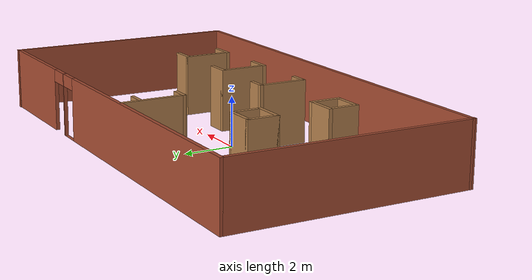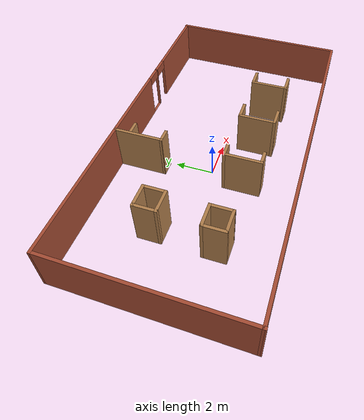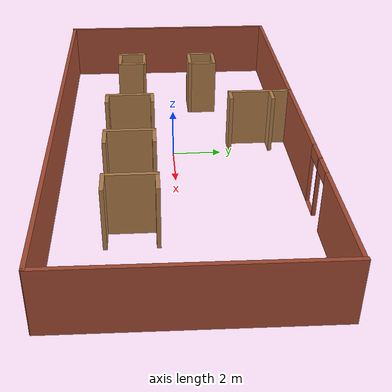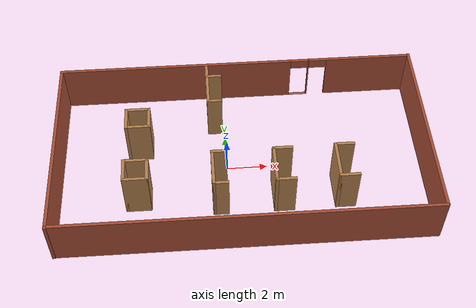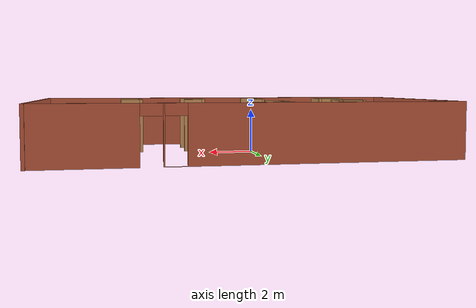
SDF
<?xml version='1.0'?>
<sdf version='1.7'>
  <model name='testdemo'>
    <pose>0.761967 0.164991 0 0 -0 0</pose>
    <link name='Wall_11'>
      <collision name='Wall_11_Collision'>
        <geometry>
          <box>
            <size>9.71806 0.15 2.5</size>
          </box>
        </geometry>
        <pose>0 0 1.25 0 -0 0</pose>
      </collision>
      <visual name='Wall_11_Visual'>
        <pose>0 0 1.25 0 -0 0</pose>
        <geometry>
          <box>
            <size>9.71806 0.15 2.5</size>
          </box>
        </geometry>
        <material>
          <script>
            <uri>file://media/materials/scripts/gazebo.material</uri>
            <name>Gazebo/Bricks</name>
          </script>
          <ambient>1 1 1 1</ambient>
        </material>
        <meta>
          <layer>0</layer>
        </meta>
      </visual>
      <pose>9.00891 0.015296 0 0 -0 1.56127</pose>
    </link>
    <link name='Wall_12'>
      <pose>0.030297 4.76832 0 0 -0 -3.14157</pose>
      <visual name='Wall_12_Visual_0'>
        <pose>-6.88355 0 1.25 0 -0 0</pose>
        <geometry>
          <box>
            <size>4.37011 0.15 2.5</size>
          </box>
        </geometry>
        <material>
          <script>
            <uri>file://media/materials/scripts/gazebo.material</uri>
            <name>Gazebo/Bricks</name>
          </script>
          <ambient>1 1 1 1</ambient>
        </material>
        <meta>
          <layer>0</layer>
        </meta>
      </visual>
      <collision name='Wall_12_Collision_0'>
        <geometry>
          <box>
            <size>4.37011 0.15 2.5</size>
          </box>
        </geometry>
        <pose>-6.88355 0 1.25 0 -0 0</pose>
      </collision>
      <visual name='Wall_12_Visual_1'>
        <pose>-3.76859 0 1.25 0 -0 0</pose>
        <geometry>
          <box>
            <size>0.059809 0.15 2.5</size>
          </box>
        </geometry>
        <material>
          <script>
            <uri>file://media/materials/scripts/gazebo.material</uri>
            <name>Gazebo/Bricks</name>
          </script>
          <ambient>1 1 1 1</ambient>
        </material>
        <meta>
          <layer>0</layer>
        </meta>
      </visual>
      <collision name='Wall_12_Collision_1'>
        <geometry>
          <box>
            <size>0.059809 0.15 2.5</size>
          </box>
        </geometry>
        <pose>-3.76859 0 1.25 0 -0 0</pose>
      </collision>
      <visual name='Wall_12_Visual_2'>
        <pose>3.11496 0 1.25 0 -0 0</pose>
        <geometry>
          <box>
            <size>11.9073 0.15 2.5</size>
          </box>
        </geometry>
        <material>
          <script>
            <uri>file://media/materials/scripts/gazebo.material</uri>
            <name>Gazebo/Bricks</name>
          </script>
          <ambient>1 1 1 1</ambient>
        </material>
        <meta>
          <layer>0</layer>
        </meta>
      </visual>
      <collision name='Wall_12_Collision_2'>
        <geometry>
          <box>
            <size>11.9073 0.15 2.5</size>
          </box>
        </geometry>
        <pose>3.11496 0 1.25 0 -0 0</pose>
      </collision>
      <visual name='Wall_12_Visual_3'>
        <pose>-3.28869 0 0 0 -0 0</pose>
        <geometry>
          <box>
            <size>0.9 0.15 0</size>
          </box>
        </geometry>
        <material>
          <script>
            <uri>file://media/materials/scripts/gazebo.material</uri>
            <name>Gazebo/Bricks</name>
          </script>
          <ambient>1 1 1 1</ambient>
        </material>
        <meta>
          <layer>0</layer>
        </meta>
      </visual>
      <collision name='Wall_12_Collision_3'>
        <geometry>
          <box>
            <size>0.9 0.15 0</size>
          </box>
        </geometry>
        <pose>-3.28869 0 0 0 -0 0</pose>
      </collision>
      <visual name='Wall_12_Visual_4'>
        <pose>-4.2485 0 2.25 0 -0 0</pose>
        <geometry>
          <box>
            <size>0.9 0.15 0.5</size>
          </box>
        </geometry>
        <material>
          <script>
            <uri>file://media/materials/scripts/gazebo.material</uri>
            <name>Gazebo/Bricks</name>
          </script>
          <ambient>1 1 1 1</ambient>
        </material>
        <meta>
          <layer>0</layer>
        </meta>
      </visual>
      <collision name='Wall_12_Collision_4'>
        <geometry>
          <box>
            <size>0.9 0.15 0.5</size>
          </box>
        </geometry>
        <pose>-4.2485 0 2.25 0 -0 0</pose>
      </collision>
      <visual name='Wall_12_Visual_5'>
        <pose>-3.28869 0 2.2545 0 -0 0</pose>
        <geometry>
          <box>
            <size>0.9 0.15 0.491</size>
          </box>
        </geometry>
        <material>
          <script>
            <uri>file://media/materials/scripts/gazebo.material</uri>
            <name>Gazebo/Bricks</name>
          </script>
          <ambient>1 1 1 1</ambient>
        </material>
        <meta>
          <layer>0</layer>
        </meta>
      </visual>
      <collision name='Wall_12_Collision_5'>
        <geometry>
          <box>
            <size>0.9 0.15 0.491</size>
          </box>
        </geometry>
        <pose>-3.28869 0 2.2545 0 -0 0</pose>
      </collision>
    </link>
    <link name='Wall_13'>
      <collision name='Wall_13_Collision'>
        <geometry>
          <box>
            <size>9.68706 0.15 2.5</size>
          </box>
        </geometry>
        <pose>0 0 1.25 0 -0 0</pose>
      </collision>
      <visual name='Wall_13_Visual'>
        <pose>0 0 1.25 0 -0 0</pose>
        <geometry>
          <box>
            <size>9.68706 0.15 2.5</size>
          </box>
        </geometry>
        <material>
          <script>
            <uri>file://media/materials/scripts/gazebo.material</uri>
            <name>Gazebo/Bricks</name>
          </script>
          <ambient>1 1 1 1</ambient>
        </material>
        <meta>
          <layer>0</layer>
        </meta>
      </visual>
      <pose>-9.0089 -0.030794 0 0 -0 -1.58036</pose>
    </link>
    <link name='Wall_17'>
      <collision name='Wall_17_Collision'>
        <geometry>
          <box>
            <size>2.62236 0.15 2.5</size>
          </box>
        </geometry>
        <pose>0 0 1.25 0 -0 0</pose>
      </collision>
      <visual name='Wall_17_Visual'>
        <pose>0 0 1.25 0 -0 0</pose>
        <geometry>
          <box>
            <size>2.62236 0.15 2.5</size>
          </box>
        </geometry>
        <material>
          <script>
            <uri>file://media/materials/scripts/gazebo.material</uri>
            <name>Gazebo/Wood</name>
          </script>
          <ambient>1 1 1 1</ambient>
        </material>
        <meta>
          <layer>0</layer>
        </meta>
      </visual>
      <pose>-1.53376 3.48127 0 0 -0 -1.57096</pose>
    </link>
    <link name='Wall_20'>
      <collision name='Wall_20_Collision'>
        <geometry>
          <box>
            <size>0.75 0.15 2.5</size>
          </box>
        </geometry>
        <pose>0 0 1.25 0 -0 0</pose>
      </collision>
      <visual name='Wall_20_Visual'>
        <pose>0 0 1.25 0 -0 0</pose>
        <geometry>
          <box>
            <size>0.75 0.15 2.5</size>
          </box>
        </geometry>
        <material>
          <script>
            <uri>file://media/materials/scripts/gazebo.material</uri>
            <name>Gazebo/Wood</name>
          </script>
          <ambient>1 1 1 1</ambient>
        </material>
        <meta>
          <layer>0</layer>
        </meta>
      </visual>
      <pose>-1.17238 3.95301 0 0 -0 0</pose>
    </link>
    <link name='Wall_23'>
      <collision name='Wall_23_Collision'>
        <geometry>
          <box>
            <size>2 0.15 2.5</size>
          </box>
        </geometry>
        <pose>0 0 1.25 0 -0 0</pose>
      </collision>
      <visual name='Wall_23_Visual'>
        <pose>0 0 1.25 0 -0 0</pose>
        <geometry>
          <box>
            <size>2 0.15 2.5</size>
          </box>
        </geometry>
        <material>
          <script>
            <uri>file://media/materials/scripts/gazebo.material</uri>
            <name>Gazebo/Wood</name>
          </script>
          <ambient>1 1 1 1</ambient>
        </material>
        <meta>
          <layer>0</layer>
        </meta>
      </visual>
      <pose>-1.50297 -1.92699 0 0 -0 -1.5708</pose>
    </link>
    <link name='Wall_26'>
      <collision name='Wall_26_Collision'>
        <geometry>
          <box>
            <size>0.781 0.15 2.5</size>
          </box>
        </geometry>
        <pose>0 0 1.25 0 -0 0</pose>
      </collision>
      <visual name='Wall_26_Visual'>
        <pose>0 0 1.25 0 -0 0</pose>
        <geometry>
          <box>
            <size>0.781 0.15 2.5</size>
          </box>
        </geometry>
        <material>
          <script>
            <uri>file://media/materials/scripts/gazebo.material</uri>
            <name>Gazebo/Wood</name>
          </script>
          <ambient>1 1 1 1</ambient>
        </material>
        <meta>
          <layer>0</layer>
        </meta>
      </visual>
      <pose>-1.18747 -1.00199 0 0 -0 0</pose>
    </link>
    <link name='Wall_31'>
      <collision name='Wall_31_Collision'>
        <geometry>
          <box>
            <size>0.780812 0.15 2.5</size>
          </box>
        </geometry>
        <pose>0 0 1.25 0 -0 0</pose>
      </collision>
      <visual name='Wall_31_Visual'>
        <pose>0 0 1.25 0 -0 0</pose>
        <geometry>
          <box>
            <size>0.780812 0.15 2.5</size>
          </box>
        </geometry>
        <material>
          <script>
            <uri>file://media/materials/scripts/gazebo.material</uri>
            <name>Gazebo/Wood</name>
          </script>
          <ambient>1 1 1 1</ambient>
        </material>
        <meta>
          <layer>0</layer>
        </meta>
      </visual>
      <pose>-1.18747 -2.85199 0 0 -0 0</pose>
    </link>
    <link name='Wall_35'>
      <collision name='Wall_35_Collision'>
        <geometry>
          <box>
            <size>2 0.15 2.5</size>
          </box>
        </geometry>
        <pose>0 0 1.25 0 -0 0</pose>
      </collision>
      <visual name='Wall_35_Visual'>
        <pose>0 0 1.25 0 -0 0</pose>
        <geometry>
          <box>
            <size>2 0.15 2.5</size>
          </box>
        </geometry>
        <material>
          <script>
            <uri>file://media/materials/scripts/gazebo.material</uri>
            <name>Gazebo/Wood</name>
          </script>
          <ambient>1 1 1 1</ambient>
        </material>
        <meta>
          <layer>0</layer>
        </meta>
      </visual>
      <pose>1.43503 -1.91899 0 0 -0 1.5708</pose>
    </link>
    <link name='Wall_38'>
      <collision name='Wall_38_Collision'>
        <geometry>
          <box>
            <size>1 0.15 2.5</size>
          </box>
        </geometry>
        <pose>0 0 1.25 0 -0 0</pose>
      </collision>
      <visual name='Wall_38_Visual'>
        <pose>0 0 1.25 0 -0 0</pose>
        <geometry>
          <box>
            <size>1 0.15 2.5</size>
          </box>
        </geometry>
        <material>
          <script>
            <uri>file://media/materials/scripts/gazebo.material</uri>
            <name>Gazebo/Wood</name>
          </script>
          <ambient>1 1 1 1</ambient>
        </material>
        <meta>
          <layer>0</layer>
        </meta>
      </visual>
      <pose>4.83403 -2.80499 0 0 -0 3.14159</pose>
    </link>
    <link name='Wall_39'>
      <collision name='Wall_39_Collision'>
        <geometry>
          <box>
            <size>2 0.15 2.5</size>
          </box>
        </geometry>
        <pose>0 0 1.25 0 -0 0</pose>
      </collision>
      <visual name='Wall_39_Visual'>
        <pose>0 0 1.25 0 -0 0</pose>
        <geometry>
          <box>
            <size>2 0.15 2.5</size>
          </box>
        </geometry>
        <material>
          <script>
            <uri>file://media/materials/scripts/gazebo.material</uri>
            <name>Gazebo/Wood</name>
          </script>
          <ambient>1 1 1 1</ambient>
        </material>
        <meta>
          <layer>0</layer>
        </meta>
      </visual>
      <pose>4.40903 -1.87999 0 0 -0 1.5708</pose>
    </link>
    <link name='Wall_40'>
      <collision name='Wall_40_Collision'>
        <geometry>
          <box>
            <size>1 0.15 2.5</size>
          </box>
        </geometry>
        <pose>0 0 1.25 0 -0 0</pose>
      </collision>
      <visual name='Wall_40_Visual'>
        <pose>0 0 1.25 0 -0 0</pose>
        <geometry>
          <box>
            <size>1 0.15 2.5</size>
          </box>
        </geometry>
        <material>
          <script>
            <uri>file://media/materials/scripts/gazebo.material</uri>
            <name>Gazebo/Wood</name>
          </script>
          <ambient>1 1 1 1</ambient>
        </material>
        <meta>
          <layer>0</layer>
        </meta>
      </visual>
      <pose>4.83403 -0.954991 0 0 -0 0</pose>
    </link>
    <link name='Wall_42'>
      <collision name='Wall_42_Collision'>
        <geometry>
          <box>
            <size>1 0.15 2.5</size>
          </box>
        </geometry>
        <pose>0 0 1.25 0 -0 0</pose>
      </collision>
      <visual name='Wall_42_Visual'>
        <pose>0 0 1.25 0 -0 0</pose>
        <geometry>
          <box>
            <size>1 0.15 2.5</size>
          </box>
        </geometry>
        <material>
          <script>
            <uri>file://media/materials/scripts/gazebo.material</uri>
            <name>Gazebo/Wood</name>
          </script>
          <ambient>1 1 1 1</ambient>
        </material>
        <meta>
          <layer>0</layer>
        </meta>
      </visual>
      <pose>1.86003 -0.993991 0 0 -0 0</pose>
    </link>
    <link name='Wall_44'>
      <collision name='Wall_44_Collision'>
        <geometry>
          <box>
            <size>1 0.15 2.5</size>
          </box>
        </geometry>
        <pose>0 0 1.25 0 -0 0</pose>
      </collision>
      <visual name='Wall_44_Visual'>
        <pose>0 0 1.25 0 -0 0</pose>
        <geometry>
          <box>
            <size>1 0.15 2.5</size>
          </box>
        </geometry>
        <material>
          <script>
            <uri>file://media/materials/scripts/gazebo.material</uri>
            <name>Gazebo/Wood</name>
          </script>
          <ambient>1 1 1 1</ambient>
        </material>
        <meta>
          <layer>0</layer>
        </meta>
      </visual>
      <pose>1.86003 -2.84399 0 0 -0 0</pose>
    </link>
    <link name='Wall_48'>
      <collision name='Wall_48_Collision'>
        <geometry>
          <box>
            <size>1.25 0.15 2.5</size>
          </box>
        </geometry>
        <pose>0 0 1.25 0 -0 0</pose>
      </collision>
      <visual name='Wall_48_Visual'>
        <pose>0 0 1.25 0 -0 0</pose>
        <geometry>
          <box>
            <size>1.25 0.15 2.5</size>
          </box>
        </geometry>
        <material>
          <script>
            <uri>file://media/materials/scripts/gazebo.material</uri>
            <name>Gazebo/Wood</name>
          </script>
          <ambient>1 1 1 1</ambient>
        </material>
        <meta>
          <layer>0</layer>
        </meta>
      </visual>
      <pose>-5.05397 1.89301 0 0 -0 0</pose>
    </link>
    <link name='Wall_49'>
      <collision name='Wall_49_Collision'>
        <geometry>
          <box>
            <size>1.25 0.15 2.5</size>
          </box>
        </geometry>
        <pose>0 0 1.25 0 -0 0</pose>
      </collision>
      <visual name='Wall_49_Visual'>
        <pose>0 0 1.25 0 -0 0</pose>
        <geometry>
          <box>
            <size>1.25 0.15 2.5</size>
          </box>
        </geometry>
        <material>
          <script>
            <uri>file://media/materials/scripts/gazebo.material</uri>
            <name>Gazebo/Wood</name>
          </script>
          <ambient>1 1 1 1</ambient>
        </material>
        <meta>
          <layer>0</layer>
        </meta>
      </visual>
      <pose>-4.50397 1.34301 0 0 -0 -1.5708</pose>
    </link>
    <link name='Wall_50'>
      <collision name='Wall_50_Collision'>
        <geometry>
          <box>
            <size>1.25 0.15 2.5</size>
          </box>
        </geometry>
        <pose>0 0 1.25 0 -0 0</pose>
      </collision>
      <visual name='Wall_50_Visual'>
        <pose>0 0 1.25 0 -0 0</pose>
        <geometry>
          <box>
            <size>1.25 0.15 2.5</size>
          </box>
        </geometry>
        <material>
          <script>
            <uri>file://media/materials/scripts/gazebo.material</uri>
            <name>Gazebo/Wood</name>
          </script>
          <ambient>1 1 1 1</ambient>
        </material>
        <meta>
          <layer>0</layer>
        </meta>
      </visual>
      <pose>-5.05397 0.793009 0 0 -0 3.14159</pose>
    </link>
    <link name='Wall_51'>
      <collision name='Wall_51_Collision'>
        <geometry>
          <box>
            <size>1.25 0.15 2.5</size>
          </box>
        </geometry>
        <pose>0 0 1.25 0 -0 0</pose>
      </collision>
      <visual name='Wall_51_Visual'>
        <pose>0 0 1.25 0 -0 0</pose>
        <geometry>
          <box>
            <size>1.25 0.15 2.5</size>
          </box>
        </geometry>
        <material>
          <script>
            <uri>file://media/materials/scripts/gazebo.material</uri>
            <name>Gazebo/Wood</name>
          </script>
          <ambient>1 1 1 1</ambient>
        </material>
        <meta>
          <layer>0</layer>
        </meta>
      </visual>
      <pose>-5.60397 1.34301 0 0 -0 1.5708</pose>
    </link>
    <link name='Wall_53'>
      <collision name='Wall_53_Collision'>
        <geometry>
          <box>
            <size>1.25 0.15 2.5</size>
          </box>
        </geometry>
        <pose>0 0 1.25 0 -0 0</pose>
      </collision>
      <visual name='Wall_53_Visual'>
        <pose>0 0 1.25 0 -0 0</pose>
        <geometry>
          <box>
            <size>1.25 0.15 2.5</size>
          </box>
        </geometry>
        <material>
          <script>
            <uri>file://media/materials/scripts/gazebo.material</uri>
            <name>Gazebo/Wood</name>
          </script>
          <ambient>1 1 1 1</ambient>
        </material>
        <meta>
          <layer>0</layer>
        </meta>
      </visual>
      <pose>-5.68497 -1.83499 0 0 -0 -1.5708</pose>
    </link>
    <link name='Wall_54'>
      <collision name='Wall_54_Collision'>
        <geometry>
          <box>
            <size>1.25 0.15 2.5</size>
          </box>
        </geometry>
        <pose>0 0 1.25 0 -0 0</pose>
      </collision>
      <visual name='Wall_54_Visual'>
        <pose>0 0 1.25 0 -0 0</pose>
        <geometry>
          <box>
            <size>1.25 0.15 2.5</size>
          </box>
        </geometry>
        <material>
          <script>
            <uri>file://media/materials/scripts/gazebo.material</uri>
            <name>Gazebo/Wood</name>
          </script>
          <ambient>1 1 1 1</ambient>
        </material>
        <meta>
          <layer>0</layer>
        </meta>
      </visual>
      <pose>-5.13497 -2.38499 0 0 -0 0</pose>
    </link>
    <link name='Wall_55'>
      <collision name='Wall_55_Collision'>
        <geometry>
          <box>
            <size>1.25 0.15 2.5</size>
          </box>
        </geometry>
        <pose>0 0 1.25 0 -0 0</pose>
      </collision>
      <visual name='Wall_55_Visual'>
        <pose>0 0 1.25 0 -0 0</pose>
        <geometry>
          <box>
            <size>1.25 0.15 2.5</size>
          </box>
        </geometry>
        <material>
          <script>
            <uri>file://media/materials/scripts/gazebo.material</uri>
            <name>Gazebo/Wood</name>
          </script>
          <ambient>1 1 1 1</ambient>
        </material>
        <meta>
          <layer>0</layer>
        </meta>
      </visual>
      <pose>-4.58497 -1.83499 0 0 -0 1.5708</pose>
    </link>
    <link name='Wall_56'>
      <collision name='Wall_56_Collision'>
        <geometry>
          <box>
            <size>1.25 0.15 2.5</size>
          </box>
        </geometry>
        <pose>0 0 1.25 0 -0 0</pose>
      </collision>
      <visual name='Wall_56_Visual'>
        <pose>0 0 1.25 0 -0 0</pose>
        <geometry>
          <box>
            <size>1.25 0.15 2.5</size>
          </box>
        </geometry>
        <material>
          <script>
            <uri>file://media/materials/scripts/gazebo.material</uri>
            <name>Gazebo/Wood</name>
          </script>
          <ambient>1 1 1 1</ambient>
        </material>
        <meta>
          <layer>0</layer>
        </meta>
      </visual>
      <pose>-5.13497 -1.28499 0 0 -0 3.14159</pose>
    </link>
    <link name='Wall_58'>
      <collision name='Wall_58_Collision'>
        <geometry>
          <box>
            <size>0.75 0.15 2.5</size>
          </box>
        </geometry>
        <pose>0 0 1.25 0 -0 0</pose>
      </collision>
      <visual name='Wall_58_Visual'>
        <pose>0 0 1.25 0 -0 0</pose>
        <geometry>
          <box>
            <size>0.75 0.15 2.5</size>
          </box>
        </geometry>
        <material>
          <script>
            <uri>file://media/materials/scripts/gazebo.material</uri>
            <name>Gazebo/Wood</name>
          </script>
          <ambient>1 1 1 1</ambient>
        </material>
        <meta>
          <layer>0</layer>
        </meta>
      </visual>
      <pose>-1.23397 2.24501 0 0 -0 0</pose>
    </link>
    <link name='Wall_6'>
      <collision name='Wall_6_Collision'>
        <geometry>
          <box>
            <size>18.1372 0.15 2.5</size>
          </box>
        </geometry>
        <pose>0 0 1.25 0 -0 0</pose>
      </collision>
      <visual name='Wall_6_Visual'>
        <pose>0 0 1.25 0 -0 0</pose>
        <geometry>
          <box>
            <size>18.1372 0.15 2.5</size>
          </box>
        </geometry>
        <material>
          <script>
            <uri>file://media/materials/scripts/gazebo.material</uri>
            <name>Gazebo/Bricks</name>
          </script>
          <ambient>1 1 1 1</ambient>
        </material>
        <meta>
          <layer>0</layer>
        </meta>
      </visual>
      <pose>-0.060884 -4.78381 0 0 -0 -0.001701</pose>
    </link>
    <static>1</static>
  </model>
</sdf>
